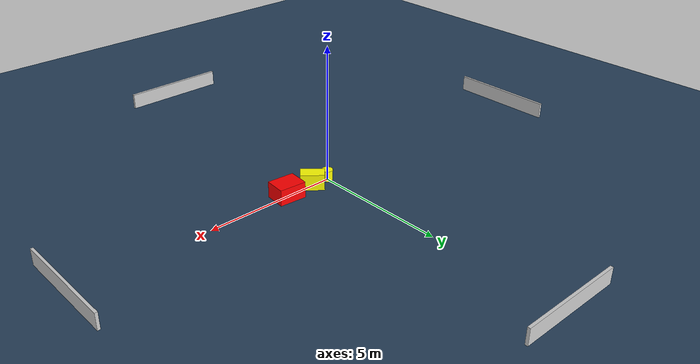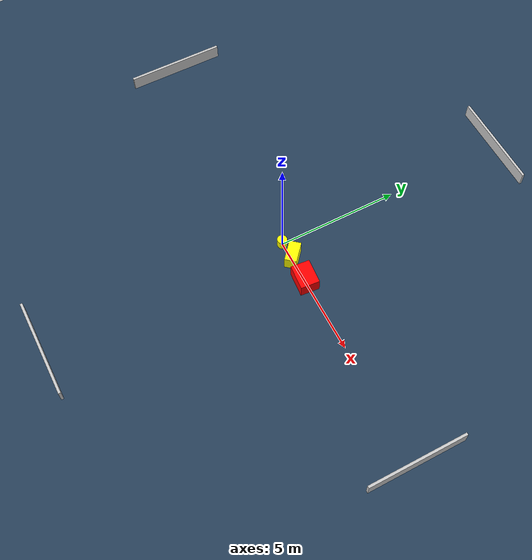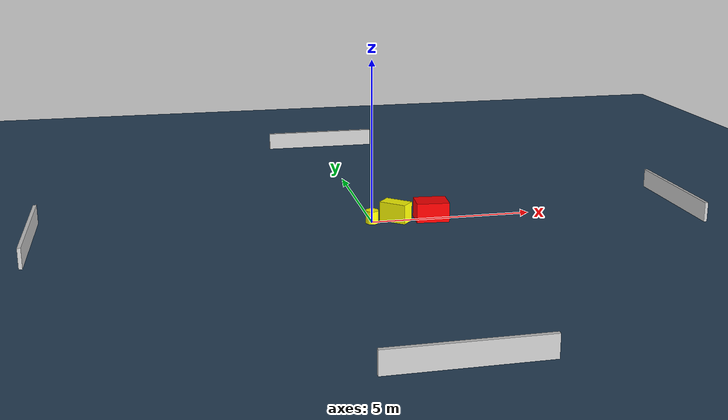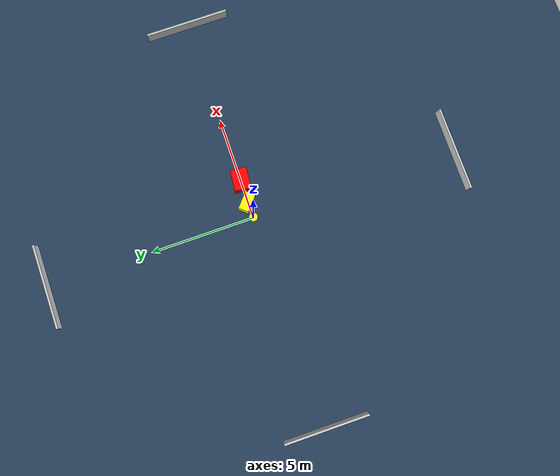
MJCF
<?xml version="1.0" ?>
<mujoco model="generated_environment">
  <option timestep="0.01" integrator="RK4" cone="elliptic"/>
  <default>
    <geom density="1"/>
  </default>
  <asset>
    <texture builtin="gradient" height="3072" name="skybox" rgb1="0.3 0.5 0.7" rgb2="0 0 0" type="skybox" width="512"/>
    <texture builtin="checker" height="300" name="groundplane" rgb1="0.2 0.3 0.4" rgb2="0.1 0.2 0.3" type="2d" width="300"/>
    <material name="groundplane" reflectance="0.2" texrepeat="5 5" texture="groundplane"/>
  </asset>
  <worldbody>
    <light dir="0 0 -1" directional="true" pos="0 0 1.5"/>
    <geom condim="3" friction="0.5 0.005 0.001" material="groundplane" name="floor" pos="0 0 0" size="0 0 0.05" type="plane"/>
    <body name="walls">
      <geom name="wall_1" condim="4" pos="-10.0 0.0 0.3" rgba="0.800000011920929 0.800000011920929 0.800000011920929 1.0" size="0.05 2.0 0.3" type="box"/>
      <geom name="wall_2" condim="4" pos="10.0 0.0 0.3" rgba="0.800000011920929 0.800000011920929 0.800000011920929 1.0" size="0.05 2.0 0.3" type="box"/>
      <geom name="wall_3" condim="4" pos="0.0 -10.0 0.3" rgba="0.800000011920929 0.800000011920929 0.800000011920929 1.0" size="2.0 0.05 0.3" type="box"/>
      <geom name="wall_4" condim="4" pos="0.0 10.0 0.3" rgba="0.800000011920929 0.800000011920929 0.800000011920929 1.0" size="2.0 0.05 0.3" type="box"/>
    </body>
    <body name="robot">
      <joint name="joint_x" type="slide" pos="0 0 0" axis="1 0 0"/>
      <joint name="joint_y" type="slide" pos="0 0 0" axis="0 1 0"/>
      <geom name="robot" type="cylinder" pos="0.0 0.0 0.2" size="0.2 0.2 0.0" mass="5.0" friction="1.0 0.005 0.0001" condim="4" rgba="1.0 1.0 0.0 1.0"/>
    </body>
    <body name="obstacle_1_movable">
      <geom name="obstacle_1_movable" condim="4" pos="0.7553074829501661 0.06665434726284766 0.3" euler="0 0 139.14242224019972" friction="0.0 0.005 0.001" rgba="1.0 1.0 0.0 1.0" size="0.4302837857369776 0.2405318722791267 0.3" type="box" mass="0.1"/>
      <joint type="free"/>
    </body>
    <body name="obstacle_2_static">
      <geom name="obstacle_2_static" condim="4" pos="1.8588676927268026 0.006629409664189454 0.3" euler="0 0 355.12845157440086" friction="0.0 0.005 0.001" rgba="1.0 0.0 0.0 1.0" size="0.5016841982781861 0.38525543469526935 0.3" type="box"/>
    </body>
  </worldbody>
  <actuator>
    <motor name="actuator_x" joint="joint_x" gear="1" ctrlrange="-1 1"/>
    <motor name="actuator_y" joint="joint_y" gear="1" ctrlrange="-1 1"/>
  </actuator>
</mujoco>
